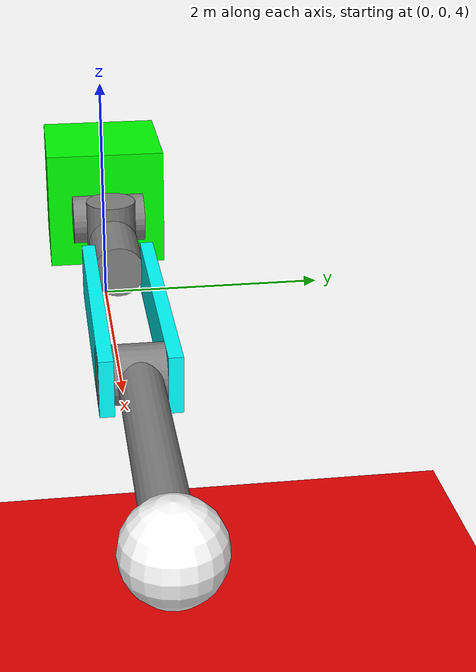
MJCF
<?xml version="1.0" ?>
<mujoco model="robot_hand">
    <option timestep="0.01" />

    <asset>
        <material name="blue_" rgba="0 0 1 1" />
        <material name="green" rgba="0 1 0 1" />
        <material name="red__" rgba="1 0 0 1" />
        <material name="white" rgba="1 1 1 1" />
    </asset>

    <worldbody>
        <geom type="plane" size="15 15 0.1" pos="0 0 0" rgba=".9 0 0 1" />
        <light diffuse=".5 .5 .5" pos="0 0 3" dir="0 0 -1" />

        <body name="cube_body" pos="0 0 5">
            <geom type="box" size="0.5 0.5 0.5" rgba="0 1 0 1" />
            <body name="link_1" pos="0.7 0 0">

                <joint name="shoulder_pitch_joint" pos="0 0 0" axis="0 1 0" range="-90 90" />
                <geom type="cylinder" size="0.2 0.3" pos="0 0 0" euler="90 0 0" mass="0.2"/>

                <body name="link_2" pos="0.4 0 0">

                    <joint name="shoulder_roll_joint" pos="0 0 0" axis="0 0 1"  range="-90 90"/>
                    <geom type="cylinder" size="0.2 0.3" pos="0 0 0" euler="0 0 0" mass="0.2"/>

                    <body name="link_3" pos="0.5 0 0">

                        <joint name="shoulder_yaw_joint" pos="0 0 0" axis="1 0 0" range="-90 90"/>
                        <geom type="cylinder" size="0.2 0.3" pos="0 0 0" euler="0 90 0" mass="0.2"/>

                        <body name="parallelepiped1" pos="1.2 0.225 0">
                            <geom type="box" size="0.05 0.2 1" rgba="0 1 1 1" euler="90 90 0" mass="0.2"/>
                        </body>

                        <body name="parallelepiped2" pos="1.2 -0.225 0">
                            <geom type="box" size="0.05 0.2 1" rgba="0 1 1 1" euler="90 90 0" mass="0.2"/>
                        </body>

                        <body name="elbow" pos="2 0 0">

                            <joint name="elbow_pitch_joint" pos="0 0 0" axis="0 1 0" range="-45 45"/>
                            <geom type="cylinder" size="0.2 0.275" pos="0 0 0" euler="90 0 0" mass="0.2"/>

                            <body name="link_4" pos="1 0 0">
                                <geom type="cylinder" size="0.15 1" pos="0 0 0" euler="0 90 0" mass="0.2"/>
                                <site name="end_effector_site" pos="0 0 0" size="0.02" rgba="1 0 0 1"/>
                            </body>

                            <body name="end_effector" pos="2 0 0">
                                <geom type="sphere" size="0.3" rgba="1 1 1 1" mass="0.2"/>
                            </body>
                        </body>

                    </body>
                </body>
            </body>
        </body>

    </worldbody>

    <actuator>
        <motor name="shoulder_pitch_motor" joint="shoulder_pitch_joint" gear="100" ctrlrange="-2.5 2.5" ctrllimited="true" forcerange="-2.5 2.5" forcelimited="true" />
        <motor gear="1000" joint="shoulder_roll_joint" name="actuator_shoulder_roll" ctrlrange="-2.5 2.5" ctrllimited="true" forcerange="-2.5 2.5" forcelimited="true"/>
        <motor gear="1000" joint="shoulder_yaw_joint" name="actuator_shoulder_yaw" ctrlrange="-2.5 2.5" ctrllimited="true" forcerange="-2.5 2.5" forcelimited="true"/>
        <motor gear="1000" joint="elbow_pitch_joint" name="actuator_elbow_pitch" ctrlrange="-2.5 2.5" ctrllimited="true" forcerange="-2.5 2.5" forcelimited="true"/>
    </actuator>

</mujoco>
